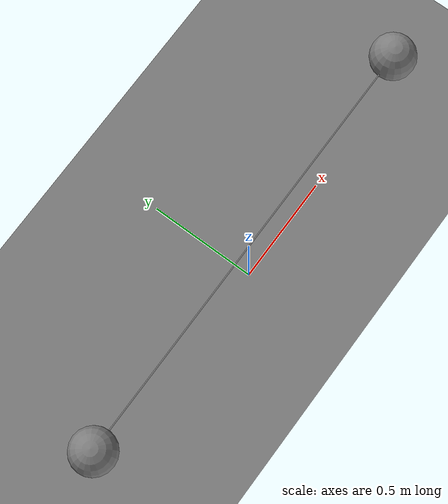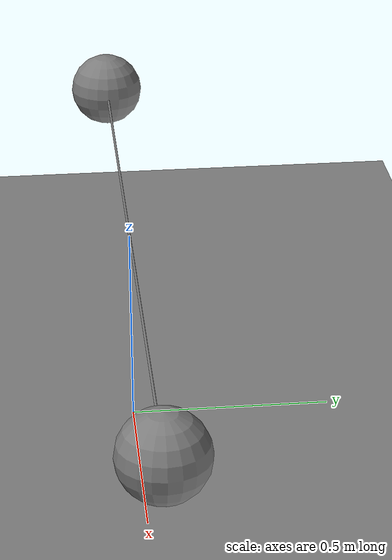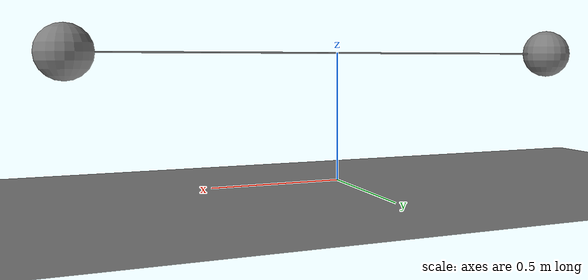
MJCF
<mujoco model="tendon_zero_stiffness">
        <option gravity="0 0 -9.81" timestep="0.002" sleep_tolerance="0.1">
            <flag sleep="enable"/>
        </option>
        <worldbody>
            <geom type="plane" size="5 5 0.1" solref="0.005 1.5"/>
            <body name="body_a" pos="-1 0 0.5">
                <freejoint name="a_free"/>
                <geom type="sphere" size="0.1" mass="1.0" solref="0.005 1.5"/>
                <site name="s_a" pos="0 0 0"/>
            </body>
            <body name="body_b" pos="1 0 0.5">
                <freejoint name="b_free"/>
                <geom type="sphere" size="0.1" mass="1.0" solref="0.005 1.5"/>
                <site name="s_b" pos="0 0 0"/>
            </body>
        </worldbody>
        <tendon>
            <spatial name="t_ab" stiffness="0" damping="0">
                <site site="s_a"/>
                <site site="s_b"/>
            </spatial>
        </tendon>
    </mujoco>
